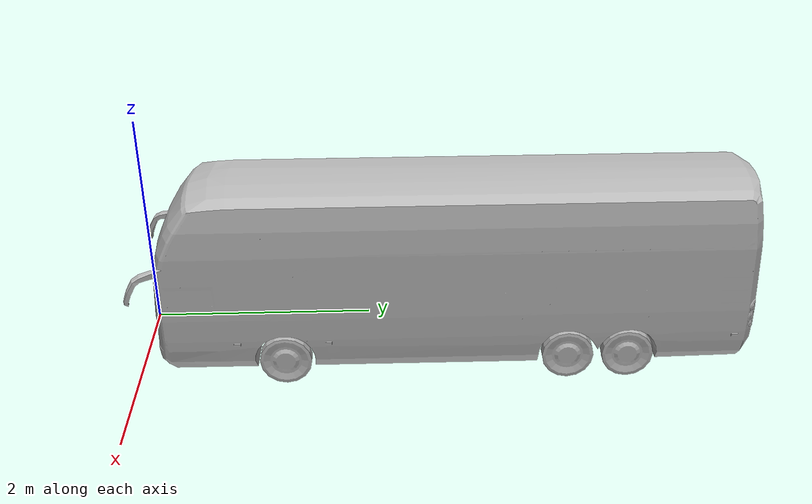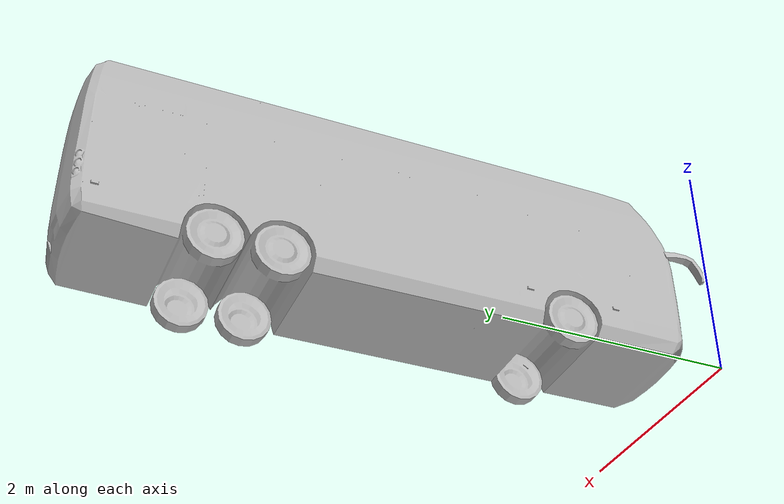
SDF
<?xml version="1.0" ?>
<sdf version='1.5'>
  <model name='bus012'>
    <static>true</static>
      <link name='link'>
        <pose frame=''>0 0 0 0 0 0</pose>

        <visual name='visual'>
        <cast_shadows>false</cast_shadows>
          <geometry>
            <mesh>
              <scale>0.01 0.01 0.01</scale>
              <uri>model://bus012/meshes/bus012.stl</uri>
            </mesh>
          </geometry>

        </visual>
      </link>
  </model>
</sdf>
